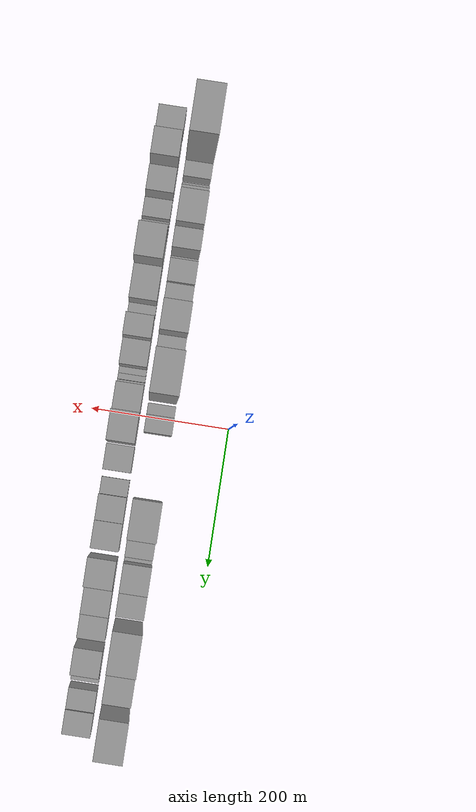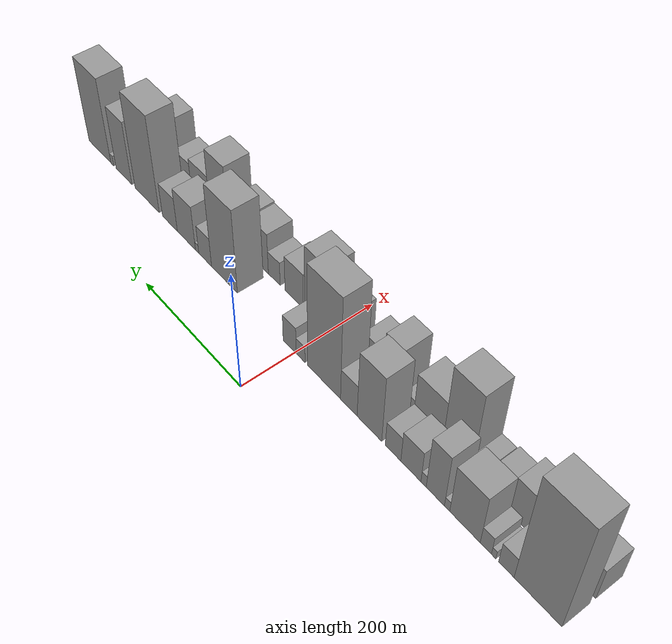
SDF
<sdf version="1.6">
 <world name="default">
  <scene>
   <sky><clouds><speed>12</speed></clouds></sky>
   <ambient>0.4 0.4 0.4 1</ambient>
   <background>0.7 0.7 0.7 1</background>
   <shadows>1</shadows>
  </scene>
  <gravity>0 0 -9.8066</gravity>
  <magnetic_field>6e-06 2.3e-05 -4.2e-05</magnetic_field>
  <physics default="0" name="default_physics" type="ode">
   <ode>
    <solver>
     <type>quick</type>
     <iters>10</iters>
     <sor>1.0</sor>
     <use_dynamic_moi_rescaling>0</use_dynamic_moi_rescaling>
    </solver>
    <constraints>
     <cfm>0</cfm>
     <erp>0.2</erp>
     <contact_max_correcting_vel>100</contact_max_correcting_vel>
     <contact_surface_layer>0.001</contact_surface_layer>
    </constraints>
   </ode>
   <max_step_size>0.004</max_step_size>
   <real_time_factor>1</real_time_factor>
   <real_time_update_rate>250</real_time_update_rate>
  </physics>
  <light name="sun" type="directional">
   <pose>0 0 10 0 0 0</pose>
   <diffuse>0.8 0.8 0.8 1</diffuse>
   <specular>0.2 0.2 0.2 1</specular>
   <attenuation>
    <range>1000</range>
    <constant>0.9</constant>
    <linear>0.01</linear>
    <quadratic>0.001</quadratic>
   </attenuation>
   <direction>-0.5 0.1 -0.9</direction>
  </light>
  <model name="building_1">
   <static>1</static>
   <pose>100.0000 -403.8343 0 0.000000 0.000000 0.000000</pose>
   <link name="link">
    <pose>0 0 100.50 0 0 0</pose>
    <collision name="collision"><geometry><box><size>40.0000 68.3315 201.0000</size></box></geometry></collision>
    <visual name="visual">
     <cast_shadows>0</cast_shadows>
     <geometry><box><size>40.0000 68.3315 201.0000</size></box></geometry>
     <material>
      <script>
       <uri>model://grey_wall/materials/scripts</uri>
       <uri>model://grey_wall/materials/textures</uri>
       <name>vrc/grey_wall</name>
      </script>
     </material>
    </visual>
   </link>
  </model>
  <model name="building_2">
   <static>1</static>
   <pose>100.0000 -358.1980 0 0.000000 0.000000 0.000000</pose>
   <link name="link">
    <pose>0 0 19.50 0 0 0</pose>
    <collision name="collision"><geometry><box><size>40.0000 22.9411 39.0000</size></box></geometry></collision>
    <visual name="visual">
     <cast_shadows>0</cast_shadows>
     <geometry><box><size>40.0000 22.9411 39.0000</size></box></geometry>
     <material>
      <script>
       <uri>model://grey_wall/materials/scripts</uri>
       <uri>model://grey_wall/materials/textures</uri>
       <name>vrc/grey_wall</name>
      </script>
     </material>
    </visual>
   </link>
  </model>
  <model name="building_3">
   <static>1</static>
   <pose>100.0000 -339.3304 0 0.000000 0.000000 0.000000</pose>
   <link name="link">
    <pose>0 0 7.50 0 0 0</pose>
    <collision name="collision"><geometry><box><size>40.0000 6.7941 15.0000</size></box></geometry></collision>
    <visual name="visual">
     <cast_shadows>0</cast_shadows>
     <geometry><box><size>40.0000 6.7941 15.0000</size></box></geometry>
     <material>
      <script>
       <uri>model://grey_wall/materials/scripts</uri>
       <uri>model://grey_wall/materials/textures</uri>
       <name>vrc/grey_wall</name>
      </script>
     </material>
    </visual>
   </link>
  </model>
  <model name="building_4">
   <static>1</static>
   <pose>100.0000 -327.4643 0 0.000000 0.000000 0.000000</pose>
   <link name="link">
    <pose>0 0 16.50 0 0 0</pose>
    <collision name="collision"><geometry><box><size>40.0000 16.9381 33.0000</size></box></geometry></collision>
    <visual name="visual">
     <cast_shadows>0</cast_shadows>
     <geometry><box><size>40.0000 16.9381 33.0000</size></box></geometry>
     <material>
      <script>
       <uri>model://grey_wall/materials/scripts</uri>
       <uri>model://grey_wall/materials/textures</uri>
       <name>vrc/grey_wall</name>
      </script>
     </material>
    </visual>
   </link>
  </model>
  <model name="building_5">
   <static>1</static>
   <pose>100.0000 -295.2742 0 0.000000 0.000000 0.000000</pose>
   <link name="link">
    <pose>0 0 45.00 0 0 0</pose>
    <collision name="collision"><geometry><box><size>40.0000 47.4421 90.0000</size></box></geometry></collision>
    <visual name="visual">
     <cast_shadows>0</cast_shadows>
     <geometry><box><size>40.0000 47.4421 90.0000</size></box></geometry>
     <material>
      <script>
       <uri>model://grey_wall/materials/scripts</uri>
       <uri>model://grey_wall/materials/textures</uri>
       <name>vrc/grey_wall</name>
      </script>
     </material>
    </visual>
   </link>
  </model>
  <model name="building_6">
   <static>1</static>
   <pose>100.0000 -267.3471 0 0.000000 0.000000 0.000000</pose>
   <link name="link">
    <pose>0 0 9.00 0 0 0</pose>
    <collision name="collision"><geometry><box><size>40.0000 8.4121 18.0000</size></box></geometry></collision>
    <visual name="visual">
     <cast_shadows>0</cast_shadows>
     <geometry><box><size>40.0000 8.4121 18.0000</size></box></geometry>
     <material>
      <script>
       <uri>model://grey_wall/materials/scripts</uri>
       <uri>model://grey_wall/materials/textures</uri>
       <name>vrc/grey_wall</name>
      </script>
     </material>
    </visual>
   </link>
  </model>
  <model name="building_7">
   <static>1</static>
   <pose>100.0000 -248.3667 0 0.000000 0.000000 0.000000</pose>
   <link name="link">
    <pose>0 0 48.00 0 0 0</pose>
    <collision name="collision"><geometry><box><size>40.0000 29.5487 96.0000</size></box></geometry></collision>
    <visual name="visual">
     <cast_shadows>0</cast_shadows>
     <geometry><box><size>40.0000 29.5487 96.0000</size></box></geometry>
     <material>
      <script>
       <uri>model://grey_wall/materials/scripts</uri>
       <uri>model://grey_wall/materials/textures</uri>
       <name>vrc/grey_wall</name>
      </script>
     </material>
    </visual>
   </link>
  </model>
  <model name="building_8">
   <static>1</static>
   <pose>100.0000 -229.2808 0 0.000000 0.000000 0.000000</pose>
   <link name="link">
    <pose>0 0 10.50 0 0 0</pose>
    <collision name="collision"><geometry><box><size>40.0000 8.6232 21.0000</size></box></geometry></collision>
    <visual name="visual">
     <cast_shadows>0</cast_shadows>
     <geometry><box><size>40.0000 8.6232 21.0000</size></box></geometry>
     <material>
      <script>
       <uri>model://grey_wall/materials/scripts</uri>
       <uri>model://grey_wall/materials/textures</uri>
       <name>vrc/grey_wall</name>
      </script>
     </material>
    </visual>
   </link>
  </model>
  <model name="building_9">
   <static>1</static>
   <pose>100.0000 -208.2306 0 0.000000 0.000000 0.000000</pose>
   <link name="link">
    <pose>0 0 28.50 0 0 0</pose>
    <collision name="collision"><geometry><box><size>40.0000 33.4772 57.0000</size></box></geometry></collision>
    <visual name="visual">
     <cast_shadows>0</cast_shadows>
     <geometry><box><size>40.0000 33.4772 57.0000</size></box></geometry>
     <material>
      <script>
       <uri>model://grey_wall/materials/scripts</uri>
       <uri>model://grey_wall/materials/textures</uri>
       <name>vrc/grey_wall</name>
      </script>
     </material>
    </visual>
   </link>
  </model>
  <model name="building_10">
   <static>1</static>
   <pose>100.0000 -178.1607 0 0.000000 0.000000 0.000000</pose>
   <link name="link">
    <pose>0 0 22.50 0 0 0</pose>
    <collision name="collision"><geometry><box><size>40.0000 26.6627 45.0000</size></box></geometry></collision>
    <visual name="visual">
     <cast_shadows>0</cast_shadows>
     <geometry><box><size>40.0000 26.6627 45.0000</size></box></geometry>
     <material>
      <script>
       <uri>model://grey_wall/materials/scripts</uri>
       <uri>model://grey_wall/materials/textures</uri>
       <name>vrc/grey_wall</name>
      </script>
     </material>
    </visual>
   </link>
  </model>
  <model name="building_11">
   <static>1</static>
   <pose>100.0000 -137.1251 0 0.000000 0.000000 0.000000</pose>
   <link name="link">
    <pose>0 0 60.00 0 0 0</pose>
    <collision name="collision"><geometry><box><size>40.0000 43.4084 120.0000</size></box></geometry></collision>
    <visual name="visual">
     <cast_shadows>0</cast_shadows>
     <geometry><box><size>40.0000 43.4084 120.0000</size></box></geometry>
     <material>
      <script>
       <uri>model://grey_wall/materials/scripts</uri>
       <uri>model://grey_wall/materials/textures</uri>
       <name>vrc/grey_wall</name>
      </script>
     </material>
    </visual>
   </link>
  </model>
  <model name="building_12">
   <static>1</static>
   <pose>100.0000 -100.4336 0 0.000000 0.000000 0.000000</pose>
   <link name="link">
    <pose>0 0 28.50 0 0 0</pose>
    <collision name="collision"><geometry><box><size>40.0000 29.9746 57.0000</size></box></geometry></collision>
    <visual name="visual">
     <cast_shadows>0</cast_shadows>
     <geometry><box><size>40.0000 29.9746 57.0000</size></box></geometry>
     <material>
      <script>
       <uri>model://grey_wall/materials/scripts</uri>
       <uri>model://grey_wall/materials/textures</uri>
       <name>vrc/grey_wall</name>
      </script>
     </material>
    </visual>
   </link>
  </model>
  <model name="building_13">
   <static>1</static>
   <pose>100.0000 -54.7586 0 0.000000 0.000000 0.000000</pose>
   <link name="link">
    <pose>0 0 91.50 0 0 0</pose>
    <collision name="collision"><geometry><box><size>40.0000 61.3755 183.0000</size></box></geometry></collision>
    <visual name="visual">
     <cast_shadows>0</cast_shadows>
     <geometry><box><size>40.0000 61.3755 183.0000</size></box></geometry>
     <material>
      <script>
       <uri>model://grey_wall/materials/scripts</uri>
       <uri>model://grey_wall/materials/textures</uri>
       <name>vrc/grey_wall</name>
      </script>
     </material>
    </visual>
   </link>
  </model>
  <model name="building_14">
   <static>1</static>
   <pose>100.0000 -10.4381 0 0.000000 0.000000 0.000000</pose>
   <link name="link">
    <pose>0 0 15.00 0 0 0</pose>
    <collision name="collision"><geometry><box><size>40.0000 17.2656 30.0000</size></box></geometry></collision>
    <visual name="visual">
     <cast_shadows>0</cast_shadows>
     <geometry><box><size>40.0000 17.2656 30.0000</size></box></geometry>
     <material>
      <script>
       <uri>model://grey_wall/materials/scripts</uri>
       <uri>model://grey_wall/materials/textures</uri>
       <name>vrc/grey_wall</name>
      </script>
     </material>
    </visual>
   </link>
  </model>
  <model name="building_15">
   <static>1</static>
   <pose>100.0000 10.9289 0 0.000000 0.000000 0.000000</pose>
   <link name="link">
    <pose>0 0 24.00 0 0 0</pose>
    <collision name="collision"><geometry><box><size>40.0000 25.4685 48.0000</size></box></geometry></collision>
    <visual name="visual">
     <cast_shadows>0</cast_shadows>
     <geometry><box><size>40.0000 25.4685 48.0000</size></box></geometry>
     <material>
      <script>
       <uri>model://grey_wall/materials/scripts</uri>
       <uri>model://grey_wall/materials/textures</uri>
       <name>vrc/grey_wall</name>
      </script>
     </material>
    </visual>
   </link>
  </model>
  <model name="building_16">
   <static>1</static>
   <pose>100.0000 145.0476 0 0.000000 0.000000 0.000000</pose>
   <link name="link">
    <pose>0 0 73.50 0 0 0</pose>
    <collision name="collision"><geometry><box><size>40.0000 55.5896 147.0000</size></box></geometry></collision>
    <visual name="visual">
     <cast_shadows>0</cast_shadows>
     <geometry><box><size>40.0000 55.5896 147.0000</size></box></geometry>
     <material>
      <script>
       <uri>model://grey_wall/materials/scripts</uri>
       <uri>model://grey_wall/materials/textures</uri>
       <name>vrc/grey_wall</name>
      </script>
     </material>
    </visual>
   </link>
  </model>
  <model name="building_17">
   <static>1</static>
   <pose>100.0000 187.0154 0 0.000000 0.000000 0.000000</pose>
   <link name="link">
    <pose>0 0 25.50 0 0 0</pose>
    <collision name="collision"><geometry><box><size>40.0000 28.3460 51.0000</size></box></geometry></collision>
    <visual name="visual">
     <cast_shadows>0</cast_shadows>
     <geometry><box><size>40.0000 28.3460 51.0000</size></box></geometry>
     <material>
      <script>
       <uri>model://grey_wall/materials/scripts</uri>
       <uri>model://grey_wall/materials/textures</uri>
       <name>vrc/grey_wall</name>
      </script>
     </material>
    </visual>
   </link>
  </model>
  <model name="building_18">
   <static>1</static>
   <pose>100.0000 204.9365 0 0.000000 0.000000 0.000000</pose>
   <link name="link">
    <pose>0 0 7.50 0 0 0</pose>
    <collision name="collision"><geometry><box><size>40.0000 7.4963 15.0000</size></box></geometry></collision>
    <visual name="visual">
     <cast_shadows>0</cast_shadows>
     <geometry><box><size>40.0000 7.4963 15.0000</size></box></geometry>
     <material>
      <script>
       <uri>model://grey_wall/materials/scripts</uri>
       <uri>model://grey_wall/materials/textures</uri>
       <name>vrc/grey_wall</name>
      </script>
     </material>
    </visual>
   </link>
  </model>
  <model name="building_19">
   <static>1</static>
   <pose>100.0000 229.3094 0 0.000000 0.000000 0.000000</pose>
   <link name="link">
    <pose>0 0 39.00 0 0 0</pose>
    <collision name="collision"><geometry><box><size>40.0000 41.2496 78.0000</size></box></geometry></collision>
    <visual name="visual">
     <cast_shadows>0</cast_shadows>
     <geometry><box><size>40.0000 41.2496 78.0000</size></box></geometry>
     <material>
      <script>
       <uri>model://grey_wall/materials/scripts</uri>
       <uri>model://grey_wall/materials/textures</uri>
       <name>vrc/grey_wall</name>
      </script>
     </material>
    </visual>
   </link>
  </model>
  <model name="building_20">
   <static>1</static>
   <pose>100.0000 267.1810 0 0.000000 0.000000 0.000000</pose>
   <link name="link">
    <pose>0 0 30.00 0 0 0</pose>
    <collision name="collision"><geometry><box><size>40.0000 34.4935 60.0000</size></box></geometry></collision>
    <visual name="visual">
     <cast_shadows>0</cast_shadows>
     <geometry><box><size>40.0000 34.4935 60.0000</size></box></geometry>
     <material>
      <script>
       <uri>model://grey_wall/materials/scripts</uri>
       <uri>model://grey_wall/materials/textures</uri>
       <name>vrc/grey_wall</name>
      </script>
     </material>
    </visual>
   </link>
  </model>
  <model name="building_21">
   <static>1</static>
   <pose>100.0000 321.5112 0 0.000000 0.000000 0.000000</pose>
   <link name="link">
    <pose>0 0 84.00 0 0 0</pose>
    <collision name="collision"><geometry><box><size>40.0000 58.1671 168.0000</size></box></geometry></collision>
    <visual name="visual">
     <cast_shadows>0</cast_shadows>
     <geometry><box><size>40.0000 58.1671 168.0000</size></box></geometry>
     <material>
      <script>
       <uri>model://grey_wall/materials/scripts</uri>
       <uri>model://grey_wall/materials/textures</uri>
       <name>vrc/grey_wall</name>
      </script>
     </material>
    </visual>
   </link>
  </model>
  <model name="building_22">
   <static>1</static>
   <pose>100.0000 378.3889 0 0.000000 0.000000 0.000000</pose>
   <link name="link">
    <pose>0 0 55.50 0 0 0</pose>
    <collision name="collision"><geometry><box><size>40.0000 39.5884 111.0000</size></box></geometry></collision>
    <visual name="visual">
     <cast_shadows>0</cast_shadows>
     <geometry><box><size>40.0000 39.5884 111.0000</size></box></geometry>
     <material>
      <script>
       <uri>model://grey_wall/materials/scripts</uri>
       <uri>model://grey_wall/materials/textures</uri>
       <name>vrc/grey_wall</name>
      </script>
     </material>
    </visual>
   </link>
  </model>
  <model name="building_23">
   <static>1</static>
   <pose>100.0000 407.8945 0 0.000000 0.000000 0.000000</pose>
   <link name="link">
    <pose>0 0 9.00 0 0 0</pose>
    <collision name="collision"><geometry><box><size>40.0000 7.4227 18.0000</size></box></geometry></collision>
    <visual name="visual">
     <cast_shadows>0</cast_shadows>
     <geometry><box><size>40.0000 7.4227 18.0000</size></box></geometry>
     <material>
      <script>
       <uri>model://grey_wall/materials/scripts</uri>
       <uri>model://grey_wall/materials/textures</uri>
       <name>vrc/grey_wall</name>
      </script>
     </material>
    </visual>
   </link>
  </model>
  <model name="building_24">
   <static>1</static>
   <pose>100.0000 439.9779 0 0.000000 0.000000 0.000000</pose>
   <link name="link">
    <pose>0 0 73.50 0 0 0</pose>
    <collision name="collision"><geometry><box><size>40.0000 56.7441 147.0000</size></box></geometry></collision>
    <visual name="visual">
     <cast_shadows>0</cast_shadows>
     <geometry><box><size>40.0000 56.7441 147.0000</size></box></geometry>
     <material>
      <script>
       <uri>model://grey_wall/materials/scripts</uri>
       <uri>model://grey_wall/materials/textures</uri>
       <name>vrc/grey_wall</name>
      </script>
     </material>
    </visual>
   </link>
  </model>
  <model name="building_25">
   <static>1</static>
   <pose>149.0000 -420.5797 0 0.000000 0.000000 0.000000</pose>
   <link name="link">
    <pose>0 0 30.00 0 0 0</pose>
    <collision name="collision"><geometry><box><size>40.0000 34.8406 60.0000</size></box></geometry></collision>
    <visual name="visual">
     <cast_shadows>0</cast_shadows>
     <geometry><box><size>40.0000 34.8406 60.0000</size></box></geometry>
     <material>
      <script>
       <uri>model://grey_wall/materials/scripts</uri>
       <uri>model://grey_wall/materials/textures</uri>
       <name>vrc/grey_wall</name>
      </script>
     </material>
    </visual>
   </link>
  </model>
  <model name="building_26">
   <static>1</static>
   <pose>149.0000 -373.9701 0 0.000000 0.000000 0.000000</pose>
   <link name="link">
    <pose>0 0 54.00 0 0 0</pose>
    <collision name="collision"><geometry><box><size>40.0000 38.3785 108.0000</size></box></geometry></collision>
    <visual name="visual">
     <cast_shadows>0</cast_shadows>
     <geometry><box><size>40.0000 38.3785 108.0000</size></box></geometry>
     <material>
      <script>
       <uri>model://grey_wall/materials/scripts</uri>
       <uri>model://grey_wall/materials/textures</uri>
       <name>vrc/grey_wall</name>
      </script>
     </material>
    </visual>
   </link>
  </model>
  <model name="building_27">
   <static>1</static>
   <pose>149.0000 -330.5344 0 0.000000 0.000000 0.000000</pose>
   <link name="link">
    <pose>0 0 36.00 0 0 0</pose>
    <collision name="collision"><geometry><box><size>40.0000 36.4929 72.0000</size></box></geometry></collision>
    <visual name="visual">
     <cast_shadows>0</cast_shadows>
     <geometry><box><size>40.0000 36.4929 72.0000</size></box></geometry>
     <material>
      <script>
       <uri>model://grey_wall/materials/scripts</uri>
       <uri>model://grey_wall/materials/textures</uri>
       <name>vrc/grey_wall</name>
      </script>
     </material>
    </visual>
   </link>
  </model>
  <model name="building_28">
   <static>1</static>
   <pose>149.0000 -292.4167 0 0.000000 0.000000 0.000000</pose>
   <link name="link">
    <pose>0 0 25.50 0 0 0</pose>
    <collision name="collision"><geometry><box><size>40.0000 27.7424 51.0000</size></box></geometry></collision>
    <visual name="visual">
     <cast_shadows>0</cast_shadows>
     <geometry><box><size>40.0000 27.7424 51.0000</size></box></geometry>
     <material>
      <script>
       <uri>model://grey_wall/materials/scripts</uri>
       <uri>model://grey_wall/materials/textures</uri>
       <name>vrc/grey_wall</name>
      </script>
     </material>
    </visual>
   </link>
  </model>
  <model name="building_29">
   <static>1</static>
   <pose>149.0000 -264.1624 0 0.000000 0.000000 0.000000</pose>
   <link name="link">
    <pose>0 0 22.50 0 0 0</pose>
    <collision name="collision"><geometry><box><size>40.0000 22.7663 45.0000</size></box></geometry></collision>
    <visual name="visual">
     <cast_shadows>0</cast_shadows>
     <geometry><box><size>40.0000 22.7663 45.0000</size></box></geometry>
     <material>
      <script>
       <uri>model://grey_wall/materials/scripts</uri>
       <uri>model://grey_wall/materials/textures</uri>
       <name>vrc/grey_wall</name>
      </script>
     </material>
    </visual>
   </link>
  </model>
  <model name="building_30">
   <static>1</static>
   <pose>149.0000 -229.1764 0 0.000000 0.000000 0.000000</pose>
   <link name="link">
    <pose>0 0 75.00 0 0 0</pose>
    <collision name="collision"><geometry><box><size>40.0000 47.2056 150.0000</size></box></geometry></collision>
    <visual name="visual">
     <cast_shadows>0</cast_shadows>
     <geometry><box><size>40.0000 47.2056 150.0000</size></box></geometry>
     <material>
      <script>
       <uri>model://grey_wall/materials/scripts</uri>
       <uri>model://grey_wall/materials/textures</uri>
       <name>vrc/grey_wall</name>
      </script>
     </material>
    </visual>
   </link>
  </model>
  <model name="building_31">
   <static>1</static>
   <pose>149.0000 -181.1729 0 0.000000 0.000000 0.000000</pose>
   <link name="link">
    <pose>0 0 42.00 0 0 0</pose>
    <collision name="collision"><geometry><box><size>40.0000 48.8014 84.0000</size></box></geometry></collision>
    <visual name="visual">
     <cast_shadows>0</cast_shadows>
     <geometry><box><size>40.0000 48.8014 84.0000</size></box></geometry>
     <material>
      <script>
       <uri>model://grey_wall/materials/scripts</uri>
       <uri>model://grey_wall/materials/textures</uri>
       <name>vrc/grey_wall</name>
      </script>
     </material>
    </visual>
   </link>
  </model>
  <model name="building_32">
   <static>1</static>
   <pose>149.0000 -148.0773 0 0.000000 0.000000 0.000000</pose>
   <link name="link">
    <pose>0 0 16.50 0 0 0</pose>
    <collision name="collision"><geometry><box><size>40.0000 17.3899 33.0000</size></box></geometry></collision>
    <visual name="visual">
     <cast_shadows>0</cast_shadows>
     <geometry><box><size>40.0000 17.3899 33.0000</size></box></geometry>
     <material>
      <script>
       <uri>model://grey_wall/materials/scripts</uri>
       <uri>model://grey_wall/materials/textures</uri>
       <name>vrc/grey_wall</name>
      </script>
     </material>
    </visual>
   </link>
  </model>
  <model name="building_33">
   <static>1</static>
   <pose>149.0000 -118.4315 0 0.000000 0.000000 0.000000</pose>
   <link name="link">
    <pose>0 0 51.00 0 0 0</pose>
    <collision name="collision"><geometry><box><size>40.0000 31.9018 102.0000</size></box></geometry></collision>
    <visual name="visual">
     <cast_shadows>0</cast_shadows>
     <geometry><box><size>40.0000 31.9018 102.0000</size></box></geometry>
     <material>
      <script>
       <uri>model://grey_wall/materials/scripts</uri>
       <uri>model://grey_wall/materials/textures</uri>
       <name>vrc/grey_wall</name>
      </script>
     </material>
    </visual>
   </link>
  </model>
  <model name="building_34">
   <static>1</static>
   <pose>149.0000 -83.8660 0 0.000000 0.000000 0.000000</pose>
   <link name="link">
    <pose>0 0 33.00 0 0 0</pose>
    <collision name="collision"><geometry><box><size>40.0000 37.2292 66.0000</size></box></geometry></collision>
    <visual name="visual">
     <cast_shadows>0</cast_shadows>
     <geometry><box><size>40.0000 37.2292 66.0000</size></box></geometry>
     <material>
      <script>
       <uri>model://grey_wall/materials/scripts</uri>
       <uri>model://grey_wall/materials/textures</uri>
       <name>vrc/grey_wall</name>
      </script>
     </material>
    </visual>
   </link>
  </model>
  <model name="building_35">
   <static>1</static>
   <pose>149.0000 -60.4325 0 0.000000 0.000000 0.000000</pose>
   <link name="link">
    <pose>0 0 10.50 0 0 0</pose>
    <collision name="collision"><geometry><box><size>40.0000 9.6378 21.0000</size></box></geometry></collision>
    <visual name="visual">
     <cast_shadows>0</cast_shadows>
     <geometry><box><size>40.0000 9.6378 21.0000</size></box></geometry>
     <material>
      <script>
       <uri>model://grey_wall/materials/scripts</uri>
       <uri>model://grey_wall/materials/textures</uri>
       <name>vrc/grey_wall</name>
      </script>
     </material>
    </visual>
   </link>
  </model>
  <model name="building_36">
   <static>1</static>
   <pose>149.0000 -51.1840 0 0.000000 0.000000 0.000000</pose>
   <link name="link">
    <pose>0 0 10.50 0 0 0</pose>
    <collision name="collision"><geometry><box><size>40.0000 8.8593 21.0000</size></box></geometry></collision>
    <visual name="visual">
     <cast_shadows>0</cast_shadows>
     <geometry><box><size>40.0000 8.8593 21.0000</size></box></geometry>
     <material>
      <script>
       <uri>model://grey_wall/materials/scripts</uri>
       <uri>model://grey_wall/materials/textures</uri>
       <name>vrc/grey_wall</name>
      </script>
     </material>
    </visual>
   </link>
  </model>
  <model name="building_37">
   <static>1</static>
   <pose>149.0000 -43.3671 0 0.000000 0.000000 0.000000</pose>
   <link name="link">
    <pose>0 0 7.50 0 0 0</pose>
    <collision name="collision"><geometry><box><size>40.0000 6.7743 15.0000</size></box></geometry></collision>
    <visual name="visual">
     <cast_shadows>0</cast_shadows>
     <geometry><box><size>40.0000 6.7743 15.0000</size></box></geometry>
     <material>
      <script>
       <uri>model://grey_wall/materials/scripts</uri>
       <uri>model://grey_wall/materials/textures</uri>
       <name>vrc/grey_wall</name>
      </script>
     </material>
    </visual>
   </link>
  </model>
  <model name="building_38">
   <static>1</static>
   <pose>149.0000 -19.5001 0 0.000000 0.000000 0.000000</pose>
   <link name="link">
    <pose>0 0 36.00 0 0 0</pose>
    <collision name="collision"><geometry><box><size>40.0000 40.9598 72.0000</size></box></geometry></collision>
    <visual name="visual">
     <cast_shadows>0</cast_shadows>
     <geometry><box><size>40.0000 40.9598 72.0000</size></box></geometry>
     <material>
      <script>
       <uri>model://grey_wall/materials/scripts</uri>
       <uri>model://grey_wall/materials/textures</uri>
       <name>vrc/grey_wall</name>
      </script>
     </material>
    </visual>
   </link>
  </model>
  <model name="building_39">
   <static>1</static>
   <pose>149.0000 22.6224 0 0.000000 0.000000 0.000000</pose>
   <link name="link">
    <pose>0 0 58.50 0 0 0</pose>
    <collision name="collision"><geometry><box><size>40.0000 43.2851 117.0000</size></box></geometry></collision>
    <visual name="visual">
     <cast_shadows>0</cast_shadows>
     <geometry><box><size>40.0000 43.2851 117.0000</size></box></geometry>
     <material>
      <script>
       <uri>model://grey_wall/materials/scripts</uri>
       <uri>model://grey_wall/materials/textures</uri>
       <name>vrc/grey_wall</name>
      </script>
     </material>
    </visual>
   </link>
  </model>
  <model name="building_40">
   <static>1</static>
   <pose>149.0000 65.7310 0 0.000000 0.000000 0.000000</pose>
   <link name="link">
    <pose>0 0 31.50 0 0 0</pose>
    <collision name="collision"><geometry><box><size>40.0000 36.9321 63.0000</size></box></geometry></collision>
    <visual name="visual">
     <cast_shadows>0</cast_shadows>
     <geometry><box><size>40.0000 36.9321 63.0000</size></box></geometry>
     <material>
      <script>
       <uri>model://grey_wall/materials/scripts</uri>
       <uri>model://grey_wall/materials/textures</uri>
       <name>vrc/grey_wall</name>
      </script>
     </material>
    </visual>
   </link>
  </model>
  <model name="building_41">
   <static>1</static>
   <pose>149.0000 106.4408 0 0.000000 0.000000 0.000000</pose>
   <link name="link">
    <pose>0 0 21.00 0 0 0</pose>
    <collision name="collision"><geometry><box><size>40.0000 24.4874 42.0000</size></box></geometry></collision>
    <visual name="visual">
     <cast_shadows>0</cast_shadows>
     <geometry><box><size>40.0000 24.4874 42.0000</size></box></geometry>
     <material>
      <script>
       <uri>model://grey_wall/materials/scripts</uri>
       <uri>model://grey_wall/materials/textures</uri>
       <name>vrc/grey_wall</name>
      </script>
     </material>
    </visual>
   </link>
  </model>
  <model name="building_42">
   <static>1</static>
   <pose>149.0000 137.1117 0 0.000000 0.000000 0.000000</pose>
   <link name="link">
    <pose>0 0 36.00 0 0 0</pose>
    <collision name="collision"><geometry><box><size>40.0000 36.8545 72.0000</size></box></geometry></collision>
    <visual name="visual">
     <cast_shadows>0</cast_shadows>
     <geometry><box><size>40.0000 36.8545 72.0000</size></box></geometry>
     <material>
      <script>
       <uri>model://grey_wall/materials/scripts</uri>
       <uri>model://grey_wall/materials/textures</uri>
       <name>vrc/grey_wall</name>
      </script>
     </material>
    </visual>
   </link>
  </model>
  <model name="building_43">
   <static>1</static>
   <pose>149.0000 175.1943 0 0.000000 0.000000 0.000000</pose>
   <link name="link">
    <pose>0 0 37.50 0 0 0</pose>
    <collision name="collision"><geometry><box><size>40.0000 39.3106 75.0000</size></box></geometry></collision>
    <visual name="visual">
     <cast_shadows>0</cast_shadows>
     <geometry><box><size>40.0000 39.3106 75.0000</size></box></geometry>
     <material>
      <script>
       <uri>model://grey_wall/materials/scripts</uri>
       <uri>model://grey_wall/materials/textures</uri>
       <name>vrc/grey_wall</name>
      </script>
     </material>
    </visual>
   </link>
  </model>
  <model name="building_44">
   <static>1</static>
   <pose>149.0000 225.1326 0 0.000000 0.000000 0.000000</pose>
   <link name="link">
    <pose>0 0 60.00 0 0 0</pose>
    <collision name="collision"><geometry><box><size>40.0000 40.5661 120.0000</size></box></geometry></collision>
    <visual name="visual">
     <cast_shadows>0</cast_shadows>
     <geometry><box><size>40.0000 40.5661 120.0000</size></box></geometry>
     <material>
      <script>
       <uri>model://grey_wall/materials/scripts</uri>
       <uri>model://grey_wall/materials/textures</uri>
       <name>vrc/grey_wall</name>
      </script>
     </material>
    </visual>
   </link>
  </model>
  <model name="building_45">
   <static>1</static>
   <pose>149.0000 266.2493 0 0.000000 0.000000 0.000000</pose>
   <link name="link">
    <pose>0 0 36.00 0 0 0</pose>
    <collision name="collision"><geometry><box><size>40.0000 41.6673 72.0000</size></box></geometry></collision>
    <visual name="visual">
     <cast_shadows>0</cast_shadows>
     <geometry><box><size>40.0000 41.6673 72.0000</size></box></geometry>
     <material>
      <script>
       <uri>model://grey_wall/materials/scripts</uri>
       <uri>model://grey_wall/materials/textures</uri>
       <name>vrc/grey_wall</name>
      </script>
     </material>
    </visual>
   </link>
  </model>
  <model name="building_46">
   <static>1</static>
   <pose>149.0000 304.2400 0 0.000000 0.000000 0.000000</pose>
   <link name="link">
    <pose>0 0 31.50 0 0 0</pose>
    <collision name="collision"><geometry><box><size>40.0000 34.3141 63.0000</size></box></geometry></collision>
    <visual name="visual">
     <cast_shadows>0</cast_shadows>
     <geometry><box><size>40.0000 34.3141 63.0000</size></box></geometry>
     <material>
      <script>
       <uri>model://grey_wall/materials/scripts</uri>
       <uri>model://grey_wall/materials/textures</uri>
       <name>vrc/grey_wall</name>
      </script>
     </material>
    </visual>
   </link>
  </model>
  <model name="building_47">
   <static>1</static>
   <pose>149.0000 348.2400 0 0.000000 0.000000 0.000000</pose>
   <link name="link">
    <pose>0 0 52.50 0 0 0</pose>
    <collision name="collision"><geometry><box><size>40.0000 37.6859 105.0000</size></box></geometry></collision>
    <visual name="visual">
     <cast_shadows>0</cast_shadows>
     <geometry><box><size>40.0000 37.6859 105.0000</size></box></geometry>
     <material>
      <script>
       <uri>model://grey_wall/materials/scripts</uri>
       <uri>model://grey_wall/materials/textures</uri>
       <name>vrc/grey_wall</name>
      </script>
     </material>
    </visual>
   </link>
  </model>
  <model name="building_48">
   <static>1</static>
   <pose>149.0000 375.3630 0 0.000000 0.000000 0.000000</pose>
   <link name="link">
    <pose>0 0 16.50 0 0 0</pose>
    <collision name="collision"><geometry><box><size>40.0000 16.5602 33.0000</size></box></geometry></collision>
    <visual name="visual">
     <cast_shadows>0</cast_shadows>
     <geometry><box><size>40.0000 16.5602 33.0000</size></box></geometry>
     <material>
      <script>
       <uri>model://grey_wall/materials/scripts</uri>
       <uri>model://grey_wall/materials/textures</uri>
       <name>vrc/grey_wall</name>
      </script>
     </material>
    </visual>
   </link>
  </model>
  <model name="building_49">
   <static>1</static>
   <pose>149.0000 405.6816 0 0.000000 0.000000 0.000000</pose>
   <link name="link">
    <pose>0 0 30.00 0 0 0</pose>
    <collision name="collision"><geometry><box><size>40.0000 30.0771 60.0000</size></box></geometry></collision>
    <visual name="visual">
     <cast_shadows>0</cast_shadows>
     <geometry><box><size>40.0000 30.0771 60.0000</size></box></geometry>
     <material>
      <script>
       <uri>model://grey_wall/materials/scripts</uri>
       <uri>model://grey_wall/materials/textures</uri>
       <name>vrc/grey_wall</name>
      </script>
     </material>
    </visual>
   </link>
  </model>
  <model name="building_50">
   <static>1</static>
   <pose>149.0000 437.7758 0 0.000000 0.000000 0.000000</pose>
   <link name="link">
    <pose>0 0 33.00 0 0 0</pose>
    <collision name="collision"><geometry><box><size>40.0000 34.1114 66.0000</size></box></geometry></collision>
    <visual name="visual">
     <cast_shadows>0</cast_shadows>
     <geometry><box><size>40.0000 34.1114 66.0000</size></box></geometry>
     <material>
      <script>
       <uri>model://grey_wall/materials/scripts</uri>
       <uri>model://grey_wall/materials/textures</uri>
       <name>vrc/grey_wall</name>
      </script>
     </material>
    </visual>
   </link>
  </model>
 </world>
</sdf>
